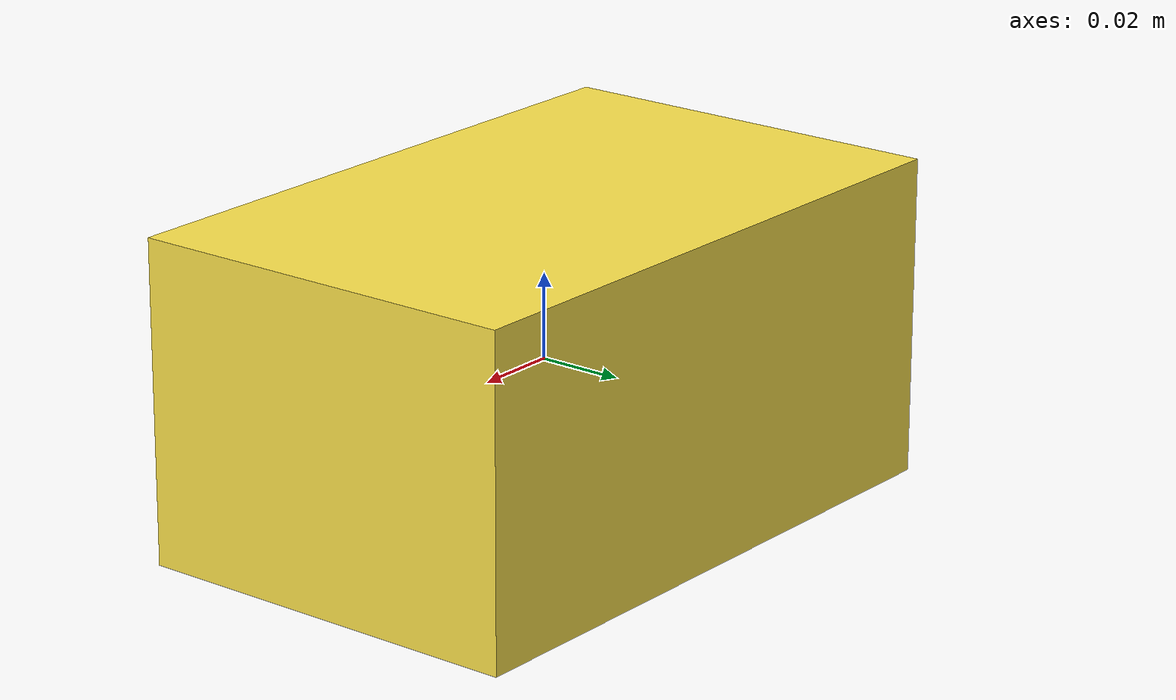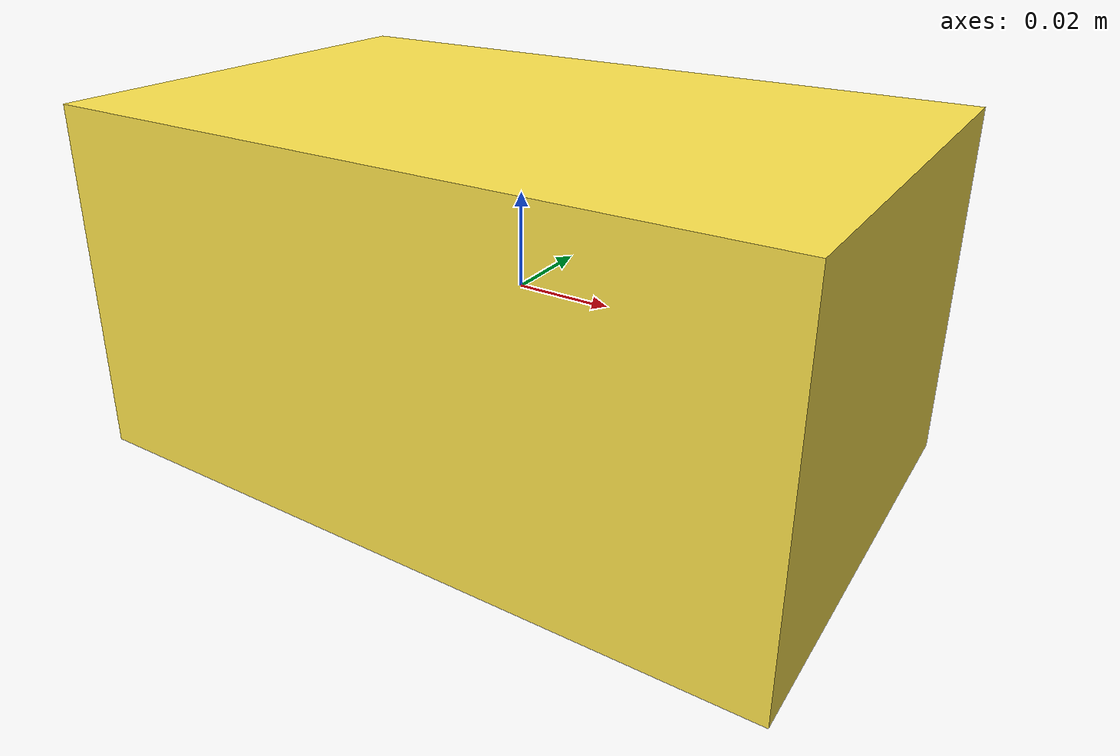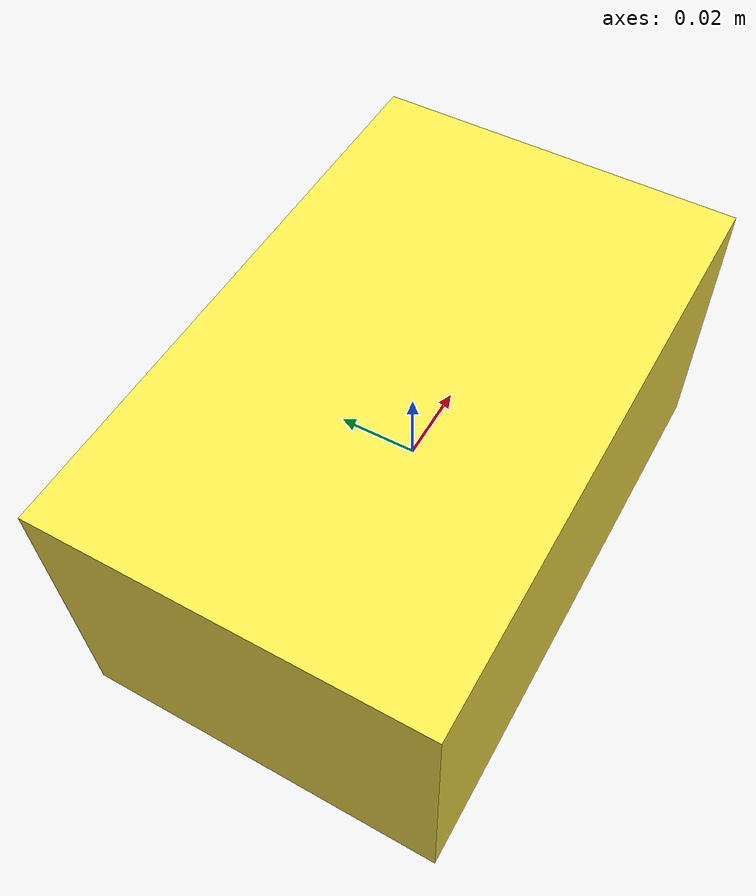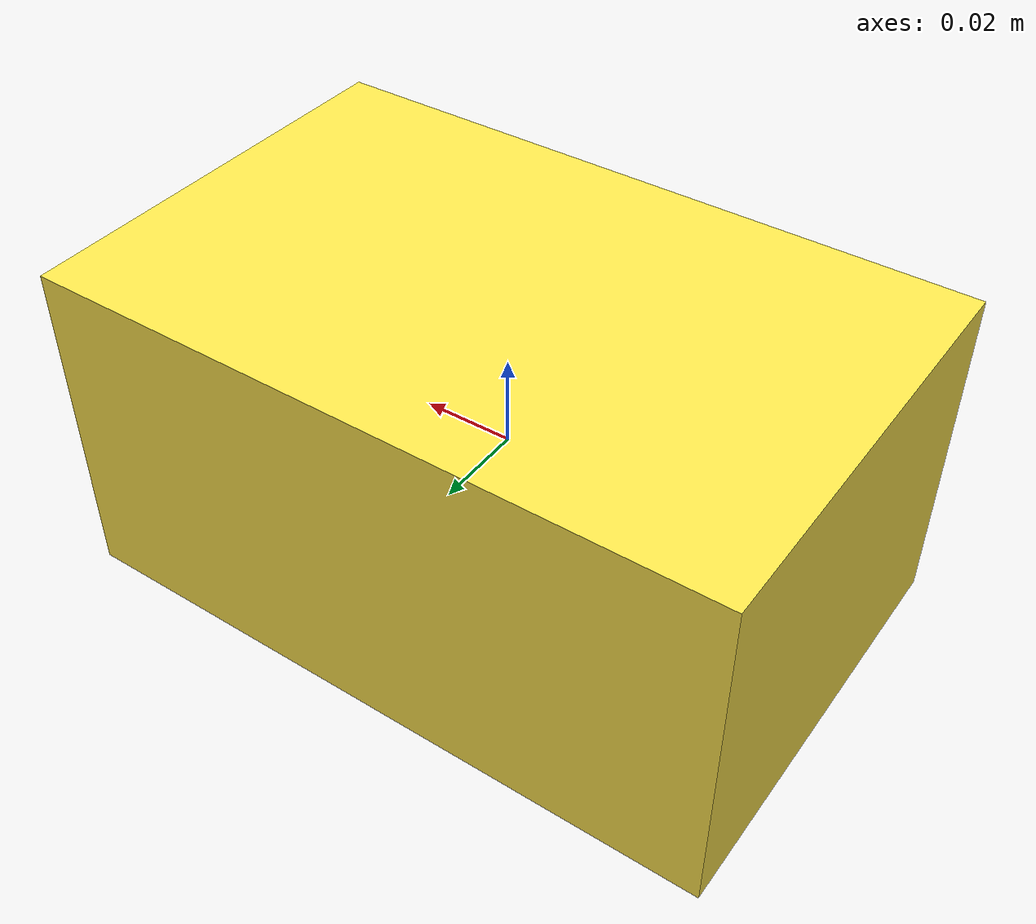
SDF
<?xml version="1.0" ?>
<sdf version="1.6">
  <model name="butter">
    <link name="link">
      <inertial>
        <mass>0.96</mass>
        <inertia>
          <ixx>0.00017</ixx>
          <ixy>0.0</ixy>
          <ixz>0.0</ixz>
          <iyy>0.00019</iyy>
          <iyz>0.0</iyz>
          <izz>0.00016</izz>
        </inertia>
      </inertial>
      <visual name="visual">
        <geometry>
          <box>
              <size>0.15 0.095 0.075</size> <!-- dimensions in meters -->
          </box>
      </geometry>
        <material>
          <ambient>1 0.9 0.3 1</ambient> <!-- A vibrant yellow color -->
          <diffuse>1 0.9 0.3 1</diffuse>
          <specular>0.1 0.1 0.1 1</specular>
      </material>
      </visual>
      <collision name="collision">
        <geometry>
          <box>
              <size>0.15 0.095 0.075</size> <!-- dimensions in meters -->
          </box>
      </geometry>
      </collision>
    </link>
  </model>
</sdf>
